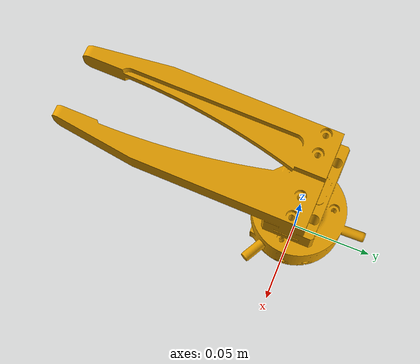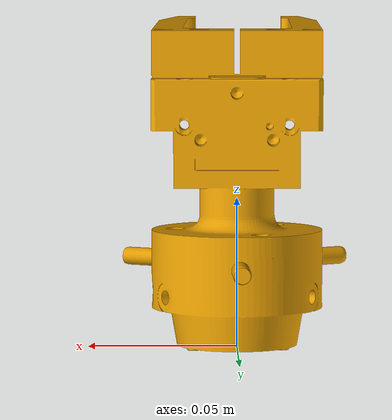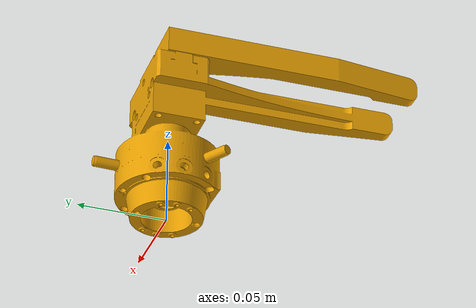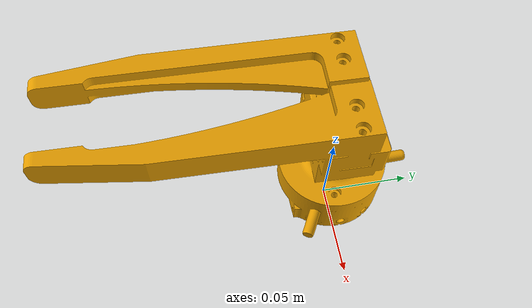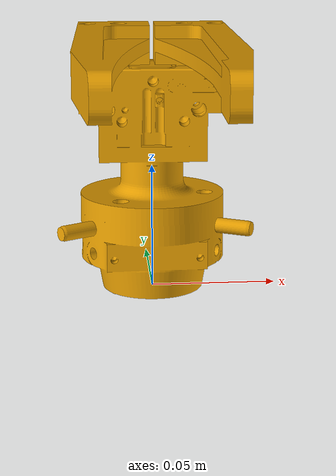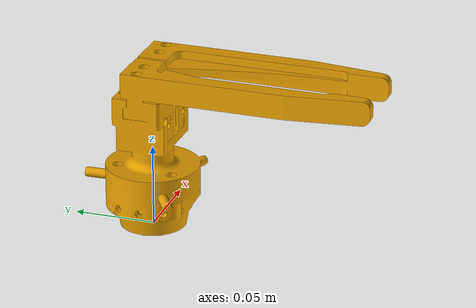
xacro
<?xml version='1.0'?>
<robot xmlns:xacro="http://www.ros.org/wiki/xacro" name="defaults">
    <link name="parallelgripper">
        <visual>
            <origin rpy="1.57 0 0" xyz=" 0 0 0 "/>
            <geometry>
                <mesh filename="package://reconcycle_description/meshes/Parallel_Gripper.obj" scale="0.001 0.001 0.001"/>
            </geometry>
        </visual>
        <collision>
            <origin rpy="1.57 0 0" xyz="0.0 0.0 0"/>
            <geometry>
                <mesh filename="package://reconcycle_description/meshes/Parallel_Gripper.obj" scale ="0.001 0.001 0.001"/>
            </geometry>
        </collision>
        <inertial>
            <origin xyz="0 0 0" rpy="0 0 0"/>
            <mass value="3"/>
            <inertia ixx="3.0" ixy="0.0" ixz="0.0" iyy="3.0" iyz="0.0" izz="3.0"/>
        </inertial>
    </link>
</robot>
